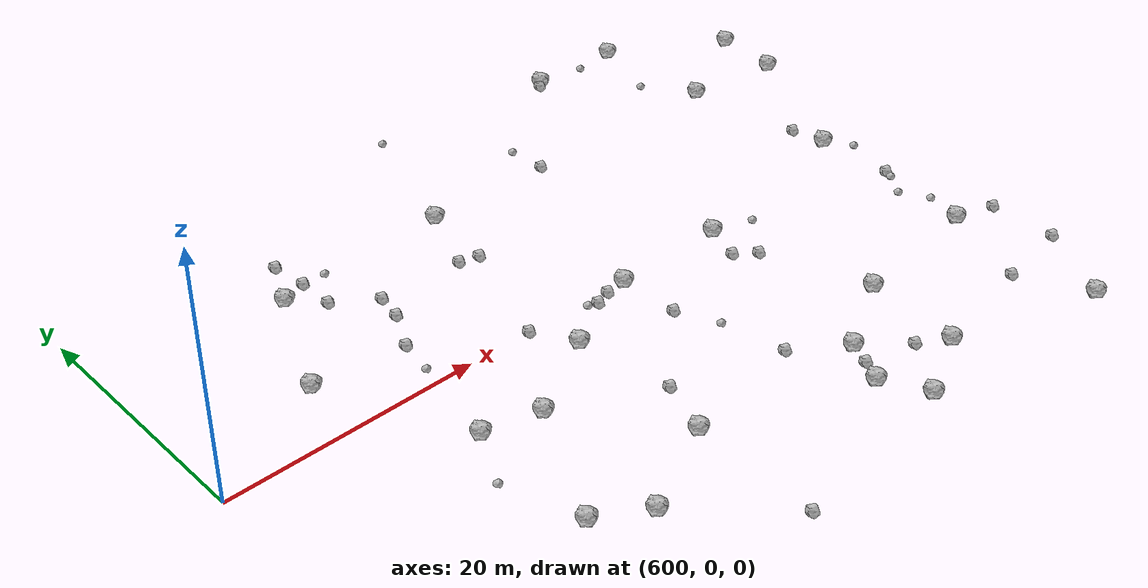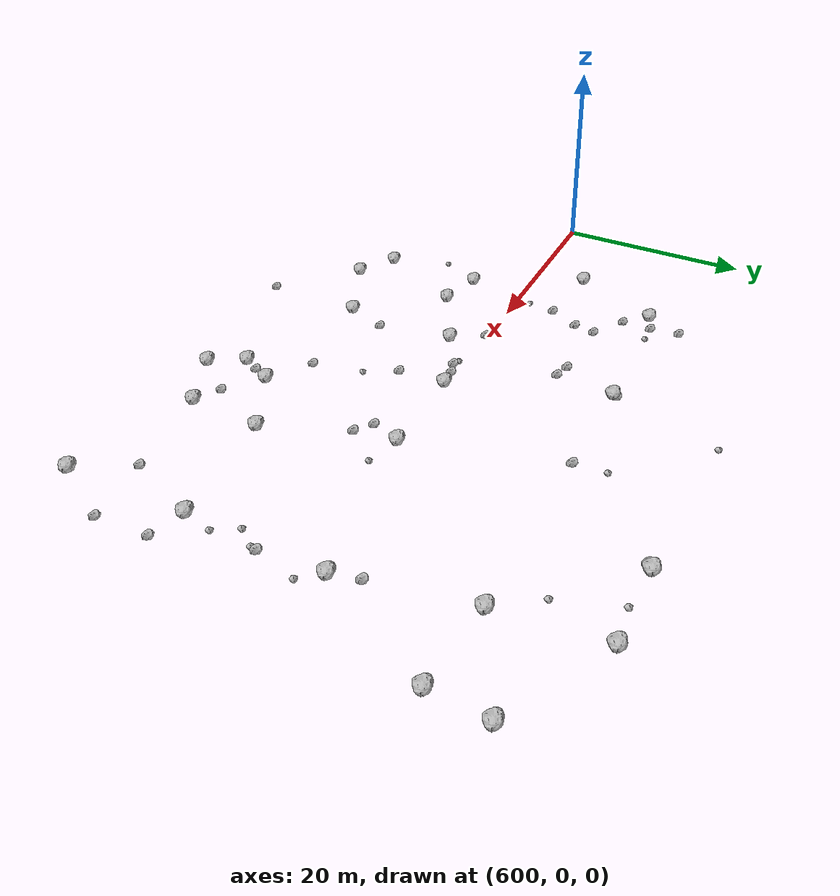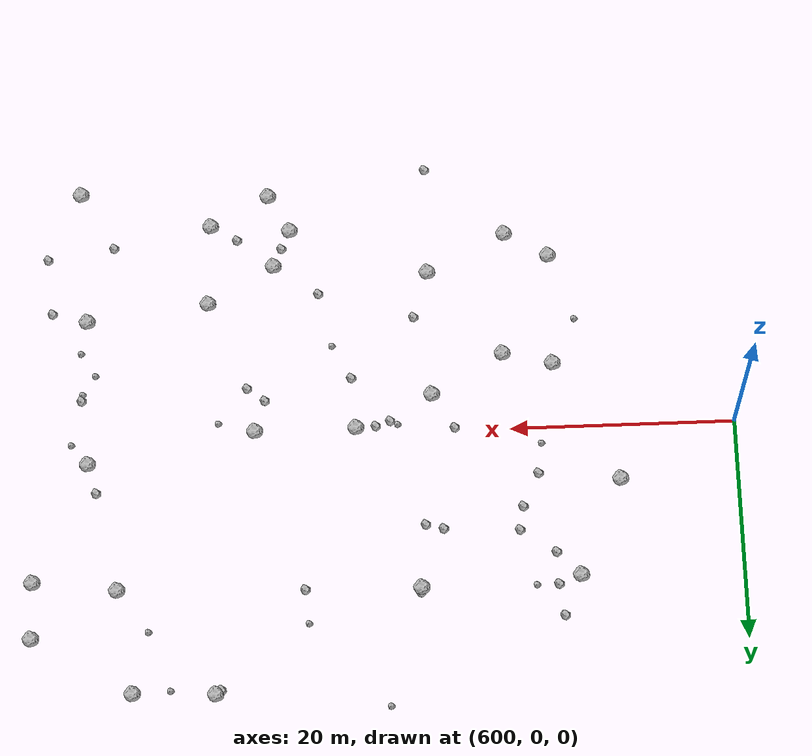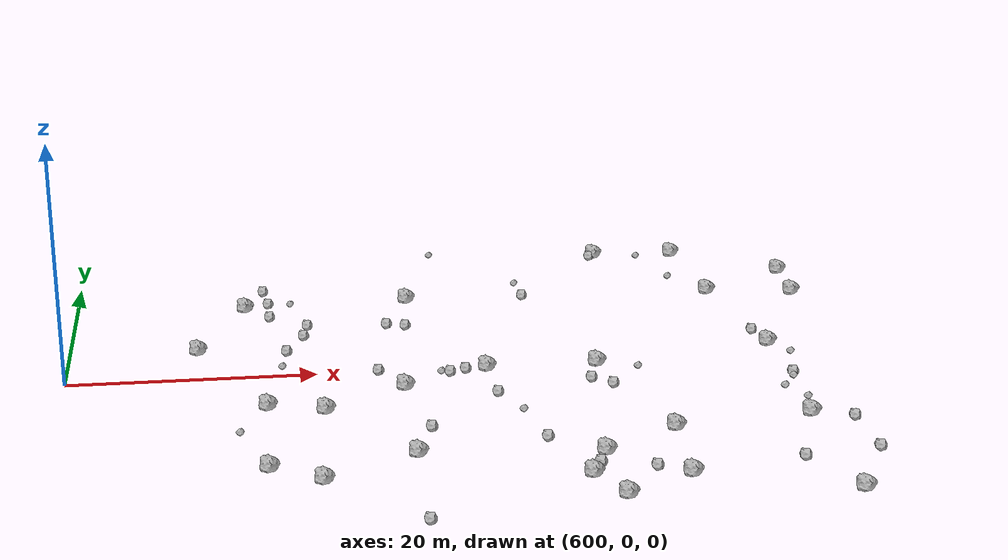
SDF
<sdf version="1.6">
 <world name="default">
  <include><uri>model://sun</uri></include>
  <model name="rock1_16_3">
   <include><uri>model://rock1</uri><pose>620.3673079116824 -7.0587700239455415 0.5 0 0 0</pose></include>
  </model>
  <model name="rock1_16_4">
   <include><uri>model://rock1</uri><pose>662.6750937056909 17.94108055492258 0.5 0 0 0</pose></include>
  </model>
  <model name="rock1_16_5">
   <include><uri>model://rock1</uri><pose>633.6840150602916 -0.5101992563490256 0.5 0 0 0</pose></include>
  </model>
  <model name="rock1_16_6">
   <include><uri>model://rock1</uri><pose>657.5419978541449 2.0783035989003764 0.5 0 0 0</pose></include>
  </model>
  <model name="rock1_16_7">
   <include><uri>model://rock1</uri><pose>639.0371724751246 -19.527452055256873 0.5 0 0 0</pose></include>
  </model>
  <model name="rock1_16_8">
   <include><uri>model://rock1</uri><pose>626.8280979943487 -3.416800316037751 0.5 0 0 0</pose></include>
  </model>
  <model name="rock1_16_9">
   <include><uri>model://rock1</uri><pose>614.3961252177934 13.810334643040065 0.5 0 0 0</pose></include>
  </model>
  <model name="rock1_16_10">
   <include><uri>model://rock1</uri><pose>653.9071852895433 23.18230283859731 0.5 0 0 0</pose></include>
  </model>
  <model name="rock1_16_11">
   <include><uri>model://rock1</uri><pose>626.7657075661557 -15.059175967966032 0.5 0 0 0</pose></include>
  </model>
  <model name="rock1_16_12">
   <include><uri>model://rock1</uri><pose>619.6918298815264 -18.546903174488016 0.5 0 0 0</pose></include>
  </model>
  <model name="rock1_16_13">
   <include><uri>model://rock1</uri><pose>662.524278155385 12.847102301323005 0.5 0 0 0</pose></include>
  </model>
  <model name="rock1_16_14">
   <include><uri>model://rock1</uri><pose>628.4269015388783 14.47240408348086 0.5 0 0 0</pose></include>
  </model>
  <model name="rock1_16_15">
   <include><uri>model://rock1</uri><pose>615.9378994791322 -5.9735459299230556 0.5 0 0 0</pose></include>
  </model>
  <model name="rock1_16_16">
   <include><uri>model://rock1</uri><pose>646.5434359349515 -12.717248337129877 0.5 0 0 0</pose></include>
  </model>
  <model name="rock1_16_17">
   <include><uri>model://rock1</uri><pose>610.4504643211699 5.0888969160209285 0.5 0 0 0</pose></include>
  </model>
  <model name="rock1_16_18">
   <include><uri>model://rock1</uri><pose>655.1157794521539 13.797689247578568 0.5 0 0 0</pose></include>
  </model>
  <model name="rock1_16_19">
   <include><uri>model://rock1</uri><pose>657.8063971249283 -23.689233483961388 0.5 0 0 0</pose></include>
  </model>
  <model name="rock1_16_20">
   <include><uri>model://rock1</uri><pose>646.6700809885939 23.473078168229357 0.5 0 0 0</pose></include>
  </model>
  <model name="rock1_16_21">
   <include><uri>model://rock1</uri><pose>640.8934683761456 -22.940726818303986 0.5 0 0 0</pose></include>
  </model>
  <model name="rock1_16_22">
   <include><uri>model://rock1</uri><pose>642.6777322528415 -0.4800094372711321 0.5 0 0 0</pose></include>
  </model>
  <model name="rock1_16_23">
   <include><uri>model://rock1</uri><pose>657.4136192197801 -11.379008483080998 0.5 0 0 0</pose></include>
  </model>
  <model name="rock1_16_24">
   <include><uri>model://rock1</uri><pose>640.5862526083014 -16.13526684660191 0.5 0 0 0</pose></include>
  </model>
  <model name="rock1_16_25">
   <include><uri>model://rock1</uri><pose>646.1406593441386 -20.187686744391094 0.5 0 0 0</pose></include>
  </model>
  <model name="rock1_16_26">
   <include><uri>model://rock1</uri><pose>615.8377715060541 -16.303421866698052 0.5 0 0 0</pose></include>
  </model>
  <model name="rock2_16_0">
   <include><uri>model://rock2</uri><pose>617.6789963097552 4.2868634251430535 0.3 0 0 0</pose></include>
  </model>
  <model name="rock2_16_1">
   <include><uri>model://rock2</uri><pose>643.2487519148704 -4.570188705424144 0.3 0 0 0</pose></include>
  </model>
  <model name="rock2_16_2">
   <include><uri>model://rock2</uri><pose>619.5598740711642 9.476332142485134 0.3 0 0 0</pose></include>
  </model>
  <model name="rock2_16_3">
   <include><uri>model://rock2</uri><pose>619.1667519628131 7.32524266682951 0.3 0 0 0</pose></include>
  </model>
  <model name="rock2_16_4">
   <include><uri>model://rock2</uri><pose>616.438621849935 11.624352025116735 0.3 0 0 0</pose></include>
  </model>
  <model name="rock2_16_5">
   <include><uri>model://rock2</uri><pose>630.6168212084361 -1.0558656262927215 0.3 0 0 0</pose></include>
  </model>
  <model name="rock2_16_6">
   <include><uri>model://rock2</uri><pose>627.8243886914514 8.702564368017107 0.3 0 0 0</pose></include>
  </model>
  <model name="rock2_16_7">
   <include><uri>model://rock2</uri><pose>628.4784217384845 14.883296572772267 0.3 0 0 0</pose></include>
  </model>
  <model name="rock2_16_8">
   <include><uri>model://rock2</uri><pose>643.7980287027742 -18.820571770683785 0.3 0 0 0</pose></include>
  </model>
  <model name="rock2_16_9">
   <include><uri>model://rock2</uri><pose>641.705567558729 -3.3668652296323422 0.3 0 0 0</pose></include>
  </model>
  <model name="rock2_16_10">
   <include><uri>model://rock2</uri><pose>646.1626748974037 23.101596175035382 0.3 0 0 0</pose></include>
  </model>
  <model name="rock2_16_11">
   <include><uri>model://rock2</uri><pose>615.9727070684327 17.42217599811248 0.3 0 0 0</pose></include>
  </model>
  <model name="rock2_16_12">
   <include><uri>model://rock2</uri><pose>616.3642240501927 14.553449729824798 0.3 0 0 0</pose></include>
  </model>
  <model name="rock2_16_13">
   <include><uri>model://rock2</uri><pose>656.8232391366124 4.763466139468385 0.3 0 0 0</pose></include>
  </model>
  <model name="rock2_16_14">
   <include><uri>model://rock2</uri><pose>626.269953957587 9.131458471814184 0.3 0 0 0</pose></include>
  </model>
  <model name="rock2_16_15">
   <include><uri>model://rock2</uri><pose>636.6209724229694 -13.381612889523485 0.3 0 0 0</pose></include>
  </model>
  <model name="rock2_16_16">
   <include><uri>model://rock2</uri><pose>638.608043338648 14.288225309946974 0.3 0 0 0</pose></include>
  </model>
  <model name="rock2_16_17">
   <include><uri>model://rock2</uri><pose>631.9144598644174 -0.6232785631133204 0.3 0 0 0</pose></include>
  </model>
  <model name="rock2_16_18">
   <include><uri>model://rock2</uri><pose>660.5173316036622 -12.295211079413434 0.3 0 0 0</pose></include>
  </model>
  <model name="rock2_16_19">
   <include><uri>model://rock2</uri><pose>633.9429459762111 -5.233619717345697 0.3 0 0 0</pose></include>
  </model>
  <model name="rock2_16_20">
   <include><uri>model://rock2</uri><pose>660.8397269950674 -17.511315697227662 0.3 0 0 0</pose></include>
  </model>
  <model name="rock2_16_21">
   <include><uri>model://rock2</uri><pose>639.8135248693204 -17.852897583075404 0.3 0 0 0</pose></include>
  </model>
  <model name="rock2_16_22">
   <include><uri>model://rock2</uri><pose>626.6327490246331 -25.084898917877222 0.3 0 0 0</pose></include>
  </model>
  <model name="rock2_16_23">
   <include><uri>model://rock2</uri><pose>654.8979355633387 -18.433849327315645 0.3 0 0 0</pose></include>
  </model>
  <model name="rock2_16_24">
   <include><uri>model://rock2</uri><pose>658.001086541684 -3.926218941242144 0.3 0 0 0</pose></include>
  </model>
  <model name="rock2_16_25">
   <include><uri>model://rock2</uri><pose>628.1617014692598 -10.835160727491822 0.3 0 0 0</pose></include>
  </model>
  <model name="rock2_16_26">
   <include><uri>model://rock2</uri><pose>624.894978561408 -0.23989129836502698 0.3 0 0 0</pose></include>
  </model>
  <model name="rock3_16_0">
   <include><uri>model://rock3</uri><pose>657.8701399502218 -4.5718566447650275 0.2 0 0 0</pose></include>
  </model>
  <model name="rock3_16_1">
   <include><uri>model://rock3</uri><pose>658.9445708014599 0.1492248587333762 0.2 0 0 0</pose></include>
  </model>
  <model name="rock3_16_2">
   <include><uri>model://rock3</uri><pose>631.4414000228059 25.001264200702003 0.2 0 0 0</pose></include>
  </model>
  <model name="rock3_16_3">
   <include><uri>model://rock3</uri><pose>613.7452792038545 -10.228473431587247 0.2 0 0 0</pose></include>
  </model>
  <model name="rock3_16_4">
   <include><uri>model://rock3</uri><pose>617.2401755110844 1.4447867684466011 0.2 0 0 0</pose></include>
  </model>
  <model name="rock3_16_5">
   <include><uri>model://rock3</uri><pose>656.710976864047 -6.312794230740767 0.2 0 0 0</pose></include>
  </model>
  <model name="rock3_16_6">
   <include><uri>model://rock3</uri><pose>650.5448331359661 22.95586356538677 0.2 0 0 0</pose></include>
  </model>
  <model name="rock3_16_7">
   <include><uri>model://rock3</uri><pose>635.5256710264717 -8.402292665379207 0.2 0 0 0</pose></include>
  </model>
  <model name="rock3_16_8">
   <include><uri>model://rock3</uri><pose>657.9631355559488 -8.46130529940828 0.2 0 0 0</pose></include>
  </model>
  <model name="rock3_16_9">
   <include><uri>model://rock3</uri><pose>618.2636269018627 14.517315859152937 0.2 0 0 0</pose></include>
  </model>
  <model name="rock3_16_10">
   <include><uri>model://rock3</uri><pose>645.8576044464713 -1.414202303155104 0.2 0 0 0</pose></include>
  </model>
  <model name="rock3_16_11">
   <include><uri>model://rock3</uri><pose>638.3379609603783 17.31484839710555 0.2 0 0 0</pose></include>
  </model>
  <model name="rock3_16_12">
   <include><uri>model://rock3</uri><pose>629.9212945607673 -0.7828922064243073 0.2 0 0 0</pose></include>
  </model>
  <model name="rock3_16_13">
   <include><uri>model://rock3</uri><pose>652.3923985422949 17.59415468114517 0.2 0 0 0</pose></include>
  </model>
 </world>
</sdf>
